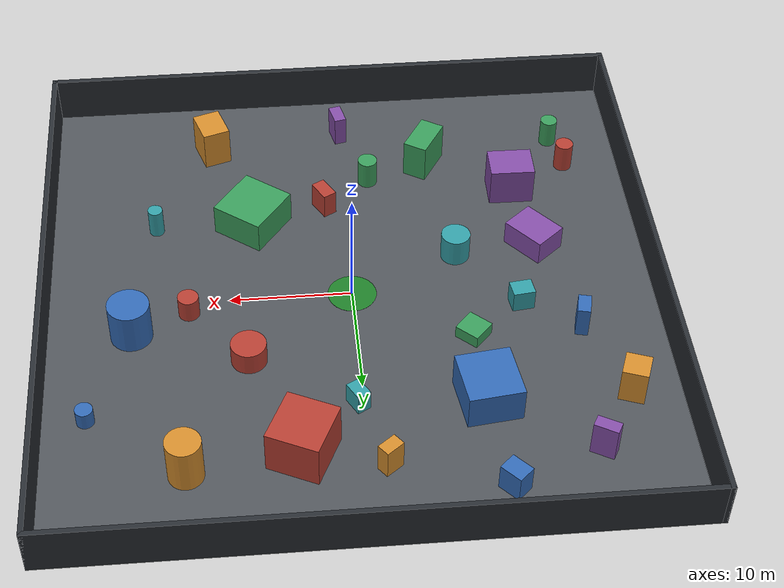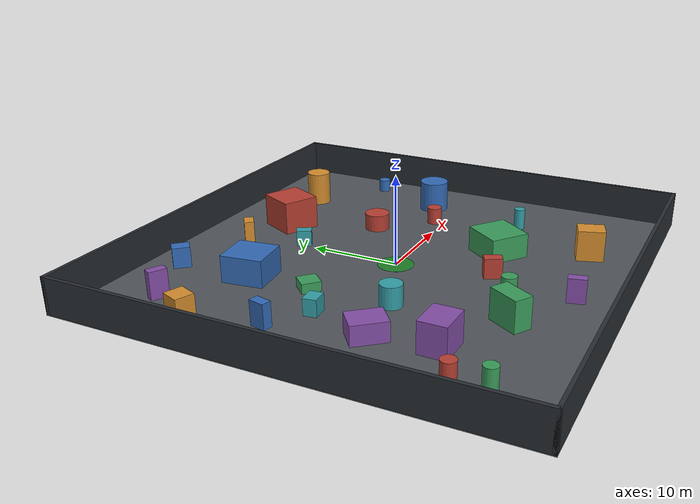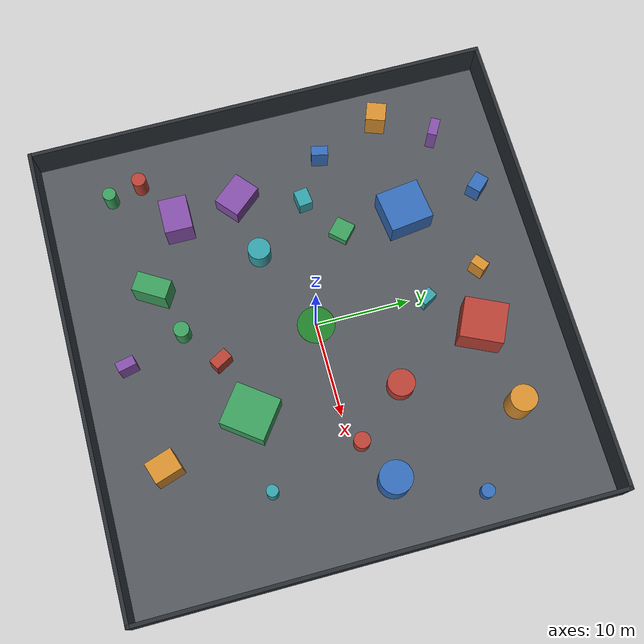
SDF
<?xml version='1.0'?>
<sdf version='1.6'>
  <world name='ego_50x50'>
    <gravity>0 0 -9.8066</gravity>
    <magnetic_field>6.0e-06 2.3e-05 -4.2e-05</magnetic_field>
    <atmosphere type='adiabatic'/>

    <physics name='px4_ode' default='1' type='ode'>
      <max_step_size>0.004</max_step_size>
      <real_time_factor>1.0</real_time_factor>
      <real_time_update_rate>250</real_time_update_rate>
      <ode>
        <solver><type>quick</type><iters>20</iters><sor>1.3</sor></solver>
        <constraints><cfm>0</cfm><erp>0.2</erp><contact_max_correcting_vel>100</contact_max_correcting_vel></constraints>
      </ode>
    </physics>

    <scene>
      <ambient>0.45 0.45 0.45 1</ambient>
      <background>0.72 0.80 0.90 1</background>
      <shadows>false</shadows>
      <grid>true</grid>
    </scene>

    <spherical_coordinates>
      <surface_model>EARTH_WGS84</surface_model>
      <latitude_deg>47.397742</latitude_deg>
      <longitude_deg>8.545594</longitude_deg>
      <elevation>488.0</elevation>
      <heading_deg>0</heading_deg>
    </spherical_coordinates>

    <include>
      <uri>model://sun</uri>
    </include>

    <model name='floor'>
      <static>true</static>
      <pose>0.000 0.000 -0.050 0 0 0.0000</pose>
      <link name='link'>
        <collision name='collision'>
          <geometry><box><size>50.000 50.000 0.100</size></box></geometry>
        </collision>
        <visual name='visual'>
          <geometry><box><size>50.000 50.000 0.100</size></box></geometry>
          <material><ambient>0.320 0.340 0.360 1.000</ambient><diffuse>0.320 0.340 0.360 1.000</diffuse></material>
        </visual>
      </link>
    </model>
    <model name='north_wall'>
      <static>true</static>
      <pose>0.000 24.800 2.000 0 0 0.0000</pose>
      <link name='link'>
        <collision name='collision'>
          <geometry><box><size>50.000 0.400 4.000</size></box></geometry>
        </collision>
        <visual name='visual'>
          <geometry><box><size>50.000 0.400 4.000</size></box></geometry>
          <material><ambient>0.160 0.180 0.200 1.000</ambient><diffuse>0.160 0.180 0.200 1.000</diffuse></material>
        </visual>
      </link>
    </model>
    <model name='south_wall'>
      <static>true</static>
      <pose>0.000 -24.800 2.000 0 0 0.0000</pose>
      <link name='link'>
        <collision name='collision'>
          <geometry><box><size>50.000 0.400 4.000</size></box></geometry>
        </collision>
        <visual name='visual'>
          <geometry><box><size>50.000 0.400 4.000</size></box></geometry>
          <material><ambient>0.160 0.180 0.200 1.000</ambient><diffuse>0.160 0.180 0.200 1.000</diffuse></material>
        </visual>
      </link>
    </model>
    <model name='east_wall'>
      <static>true</static>
      <pose>24.800 0.000 2.000 0 0 0.0000</pose>
      <link name='link'>
        <collision name='collision'>
          <geometry><box><size>0.400 50.000 4.000</size></box></geometry>
        </collision>
        <visual name='visual'>
          <geometry><box><size>0.400 50.000 4.000</size></box></geometry>
          <material><ambient>0.160 0.180 0.200 1.000</ambient><diffuse>0.160 0.180 0.200 1.000</diffuse></material>
        </visual>
      </link>
    </model>
    <model name='west_wall'>
      <static>true</static>
      <pose>-24.800 0.000 2.000 0 0 0.0000</pose>
      <link name='link'>
        <collision name='collision'>
          <geometry><box><size>0.400 50.000 4.000</size></box></geometry>
        </collision>
        <visual name='visual'>
          <geometry><box><size>0.400 50.000 4.000</size></box></geometry>
          <material><ambient>0.160 0.180 0.200 1.000</ambient><diffuse>0.160 0.180 0.200 1.000</diffuse></material>
        </visual>
      </link>
    </model>
    <model name='center_takeoff_marker'>
      <static>true</static>
      <pose>0 0 0.006 0 0 0</pose>
      <link name='link'>
        <visual name='visual'>
          <geometry><cylinder><radius>2.0</radius><length>0.01</length></cylinder></geometry>
          <material><ambient>0.12 0.50 0.16 1</ambient><diffuse>0.12 0.50 0.16 1</diffuse></material>
        </visual>
      </link>
    </model>
    <model name='box_01'>
      <static>true</static>
      <pose>4.950 16.304 1.880 0 0 2.7000</pose>
      <link name='link'>
        <collision name='collision'><geometry><box><size>4.265 4.516 3.760</size></box></geometry></collision>
        <visual name='visual'>
          <geometry><box><size>4.265 4.516 3.760</size></box></geometry>
          <material><ambient>0.720 0.250 0.200 1.000</ambient><diffuse>0.720 0.250 0.200 1.000</diffuse></material>
        </visual>
      </link>
    </model>
    <model name='box_02'>
      <static>true</static>
      <pose>-9.452 12.185 1.507 0 0 -3.0157</pose>
      <link name='link'>
        <collision name='collision'><geometry><box><size>4.412 4.649 3.014</size></box></geometry></collision>
        <visual name='visual'>
          <geometry><box><size>4.412 4.649 3.014</size></box></geometry>
          <material><ambient>0.200 0.420 0.720 1.000</ambient><diffuse>0.200 0.420 0.720 1.000</diffuse></material>
        </visual>
      </link>
    </model>
    <model name='box_03'>
      <static>true</static>
      <pose>7.714 -8.883 1.373 0 0 -0.6445</pose>
      <link name='link'>
        <collision name='collision'><geometry><box><size>4.536 4.821 2.747</size></box></geometry></collision>
        <visual name='visual'>
          <geometry><box><size>4.536 4.821 2.747</size></box></geometry>
          <material><ambient>0.230 0.620 0.360 1.000</ambient><diffuse>0.230 0.620 0.360 1.000</diffuse></material>
        </visual>
      </link>
    </model>
    <model name='cylinder_01'>
      <static>true</static>
      <pose>13.685 17.612 1.953 0 0 0.0000</pose>
      <link name='link'>
        <collision name='collision'><geometry><cylinder><radius>1.384</radius><length>3.907</length></cylinder></geometry></collision>
        <visual name='visual'>
          <geometry><cylinder><radius>1.384</radius><length>3.907</length></cylinder></geometry>
          <material><ambient>0.840 0.560 0.180 1.000</ambient><diffuse>0.840 0.560 0.180 1.000</diffuse></material>
        </visual>
      </link>
    </model>
    <model name='box_04'>
      <static>true</static>
      <pose>-15.599 -4.608 1.066 0 0 2.2727</pose>
      <link name='link'>
        <collision name='collision'><geometry><box><size>3.780 2.917 2.131</size></box></geometry></collision>
        <visual name='visual'>
          <geometry><box><size>3.780 2.917 2.131</size></box></geometry>
          <material><ambient>0.520 0.310 0.660 1.000</ambient><diffuse>0.520 0.310 0.660 1.000</diffuse></material>
        </visual>
      </link>
    </model>
    <model name='cylinder_02'>
      <static>true</static>
      <pose>-8.913 -3.810 1.204 0 0 0.0000</pose>
      <link name='link'>
        <collision name='collision'><geometry><cylinder><radius>1.203</radius><length>2.408</length></cylinder></geometry></collision>
        <visual name='visual'>
          <geometry><cylinder><radius>1.203</radius><length>2.408</length></cylinder></geometry>
          <material><ambient>0.200 0.630 0.660 1.000</ambient><diffuse>0.200 0.630 0.660 1.000</diffuse></material>
        </visual>
      </link>
    </model>
    <model name='cylinder_03'>
      <static>true</static>
      <pose>8.641 6.620 0.963 0 0 0.0000</pose>
      <link name='link'>
        <collision name='collision'><geometry><cylinder><radius>1.428</radius><length>1.926</length></cylinder></geometry></collision>
        <visual name='visual'>
          <geometry><cylinder><radius>1.428</radius><length>1.926</length></cylinder></geometry>
          <material><ambient>0.720 0.250 0.200 1.000</ambient><diffuse>0.720 0.250 0.200 1.000</diffuse></material>
        </visual>
      </link>
    </model>
    <model name='cylinder_04'>
      <static>true</static>
      <pose>17.877 3.250 1.780 0 0 0.0000</pose>
      <link name='link'>
        <collision name='collision'><geometry><cylinder><radius>1.697</radius><length>3.560</length></cylinder></geometry></collision>
        <visual name='visual'>
          <geometry><cylinder><radius>1.697</radius><length>3.560</length></cylinder></geometry>
          <material><ambient>0.200 0.420 0.720 1.000</ambient><diffuse>0.200 0.420 0.720 1.000</diffuse></material>
        </visual>
      </link>
    </model>
    <model name='box_05'>
      <static>true</static>
      <pose>-7.523 -15.478 1.695 0 0 1.0232</pose>
      <link name='link'>
        <collision name='collision'><geometry><box><size>3.666 2.062 3.389</size></box></geometry></collision>
        <visual name='visual'>
          <geometry><box><size>3.666 2.062 3.389</size></box></geometry>
          <material><ambient>0.230 0.620 0.360 1.000</ambient><diffuse>0.230 0.620 0.360 1.000</diffuse></material>
        </visual>
      </link>
    </model>
    <model name='box_06'>
      <static>true</static>
      <pose>10.951 -18.362 1.732 0 0 -1.2589</pose>
      <link name='link'>
        <collision name='collision'><geometry><box><size>2.970 2.334 3.464</size></box></geometry></collision>
        <visual name='visual'>
          <geometry><box><size>2.970 2.334 3.464</size></box></geometry>
          <material><ambient>0.840 0.560 0.180 1.000</ambient><diffuse>0.840 0.560 0.180 1.000</diffuse></material>
        </visual>
      </link>
    </model>
    <model name='box_07'>
      <static>true</static>
      <pose>-14.587 -11.390 1.677 0 0 -1.5811</pose>
      <link name='link'>
        <collision name='collision'><geometry><box><size>2.962 3.732 3.353</size></box></geometry></collision>
        <visual name='visual'>
          <geometry><box><size>2.962 3.732 3.353</size></box></geometry>
          <material><ambient>0.520 0.310 0.660 1.000</ambient><diffuse>0.520 0.310 0.660 1.000</diffuse></material>
        </visual>
      </link>
    </model>
    <model name='box_08'>
      <static>true</static>
      <pose>-13.578 2.193 0.929 0 0 -3.0153</pose>
      <link name='link'>
        <collision name='collision'><geometry><box><size>1.812 1.481 1.858</size></box></geometry></collision>
        <visual name='visual'>
          <geometry><box><size>1.812 1.481 1.858</size></box></geometry>
          <material><ambient>0.200 0.630 0.660 1.000</ambient><diffuse>0.200 0.630 0.660 1.000</diffuse></material>
        </visual>
      </link>
    </model>
    <model name='cylinder_05'>
      <static>true</static>
      <pose>13.279 1.194 0.972 0 0 0.0000</pose>
      <link name='link'>
        <collision name='collision'><geometry><cylinder><radius>0.854</radius><length>1.944</length></cylinder></geometry></collision>
        <visual name='visual'>
          <geometry><cylinder><radius>0.854</radius><length>1.944</length></cylinder></geometry>
          <material><ambient>0.720 0.250 0.200 1.000</ambient><diffuse>0.720 0.250 0.200 1.000</diffuse></material>
        </visual>
      </link>
    </model>
    <model name='cylinder_06'>
      <static>true</static>
      <pose>21.248 11.886 0.734 0 0 0.0000</pose>
      <link name='link'>
        <collision name='collision'><geometry><cylinder><radius>0.702</radius><length>1.468</length></cylinder></geometry></collision>
        <visual name='visual'>
          <geometry><cylinder><radius>0.702</radius><length>1.468</length></cylinder></geometry>
          <material><ambient>0.200 0.420 0.720 1.000</ambient><diffuse>0.200 0.420 0.720 1.000</diffuse></material>
        </visual>
      </link>
    </model>
    <model name='cylinder_07'>
      <static>true</static>
      <pose>-2.436 -13.619 1.220 0 0 0.0000</pose>
      <link name='link'>
        <collision name='collision'><geometry><cylinder><radius>0.827</radius><length>2.441</length></cylinder></geometry></collision>
        <visual name='visual'>
          <geometry><cylinder><radius>0.827</radius><length>2.441</length></cylinder></geometry>
          <material><ambient>0.230 0.620 0.360 1.000</ambient><diffuse>0.230 0.620 0.360 1.000</diffuse></material>
        </visual>
      </link>
    </model>
    <model name='box_09'>
      <static>true</static>
      <pose>-1.376 18.024 1.292 0 0 -2.4818</pose>
      <link name='link'>
        <collision name='collision'><geometry><box><size>1.645 1.077 2.585</size></box></geometry></collision>
        <visual name='visual'>
          <geometry><box><size>1.645 1.077 2.585</size></box></geometry>
          <material><ambient>0.840 0.560 0.180 1.000</ambient><diffuse>0.840 0.560 0.180 1.000</diffuse></material>
        </visual>
      </link>
    </model>
    <model name='box_10'>
      <static>true</static>
      <pose>-0.287 -19.859 1.330 0 0 0.2239</pose>
      <link name='link'>
        <collision name='collision'><geometry><box><size>1.027 1.926 2.660</size></box></geometry></collision>
        <visual name='visual'>
          <geometry><box><size>1.027 1.926 2.660</size></box></geometry>
          <material><ambient>0.520 0.310 0.660 1.000</ambient><diffuse>0.520 0.310 0.660 1.000</diffuse></material>
        </visual>
      </link>
    </model>
    <model name='cylinder_08'>
      <static>true</static>
      <pose>15.896 -8.693 1.225 0 0 0.0000</pose>
      <link name='link'>
        <collision name='collision'><geometry><cylinder><radius>0.617</radius><length>2.449</length></cylinder></geometry></collision>
        <visual name='visual'>
          <geometry><cylinder><radius>0.617</radius><length>2.449</length></cylinder></geometry>
          <material><ambient>0.200 0.630 0.660 1.000</ambient><diffuse>0.200 0.630 0.660 1.000</diffuse></material>
        </visual>
      </link>
    </model>
    <model name='box_11'>
      <static>true</static>
      <pose>1.569 -10.465 1.128 0 0 0.5066</pose>
      <link name='link'>
        <collision name='collision'><geometry><box><size>1.186 1.958 2.256</size></box></geometry></collision>
        <visual name='visual'>
          <geometry><box><size>1.186 1.958 2.256</size></box></geometry>
          <material><ambient>0.720 0.250 0.200 1.000</ambient><diffuse>0.720 0.250 0.200 1.000</diffuse></material>
        </visual>
      </link>
    </model>
    <model name='box_12'>
      <static>true</static>
      <pose>-18.007 5.188 1.353 0 0 1.3516</pose>
      <link name='link'>
        <collision name='collision'><geometry><box><size>1.788 1.045 2.705</size></box></geometry></collision>
        <visual name='visual'>
          <geometry><box><size>1.788 1.045 2.705</size></box></geometry>
          <material><ambient>0.200 0.420 0.720 1.000</ambient><diffuse>0.200 0.420 0.720 1.000</diffuse></material>
        </visual>
      </link>
    </model>
    <model name='cylinder_09'>
      <static>true</static>
      <pose>-19.024 -17.706 1.223 0 0 0.0000</pose>
      <link name='link'>
        <collision name='collision'><geometry><cylinder><radius>0.719</radius><length>2.446</length></cylinder></geometry></collision>
        <visual name='visual'>
          <geometry><cylinder><radius>0.719</radius><length>2.446</length></cylinder></geometry>
          <material><ambient>0.230 0.620 0.360 1.000</ambient><diffuse>0.230 0.620 0.360 1.000</diffuse></material>
        </visual>
      </link>
    </model>
    <model name='box_13'>
      <static>true</static>
      <pose>-20.719 12.275 1.559 0 0 2.7852</pose>
      <link name='link'>
        <collision name='collision'><geometry><box><size>2.043 2.114 3.118</size></box></geometry></collision>
        <visual name='visual'>
          <geometry><box><size>2.043 2.114 3.118</size></box></geometry>
          <material><ambient>0.840 0.560 0.180 1.000</ambient><diffuse>0.840 0.560 0.180 1.000</diffuse></material>
        </visual>
      </link>
    </model>
    <model name='box_14'>
      <static>true</static>
      <pose>-17.389 17.816 1.538 0 0 1.0591</pose>
      <link name='link'>
        <collision name='collision'><geometry><box><size>1.015 1.943 3.077</size></box></geometry></collision>
        <visual name='visual'>
          <geometry><box><size>1.015 1.943 3.077</size></box></geometry>
          <material><ambient>0.520 0.310 0.660 1.000</ambient><diffuse>0.520 0.310 0.660 1.000</diffuse></material>
        </visual>
      </link>
    </model>
    <model name='box_15'>
      <static>true</static>
      <pose>0.478 11.802 0.908 0 0 -2.6332</pose>
      <link name='link'>
        <collision name='collision'><geometry><box><size>1.147 1.672 1.816</size></box></geometry></collision>
        <visual name='visual'>
          <geometry><box><size>1.147 1.672 1.816</size></box></geometry>
          <material><ambient>0.200 0.630 0.660 1.000</ambient><diffuse>0.200 0.630 0.660 1.000</diffuse></material>
        </visual>
      </link>
    </model>
    <model name='cylinder_10'>
      <static>true</static>
      <pose>-19.826 -14.334 1.260 0 0 0.0000</pose>
      <link name='link'>
        <collision name='collision'><geometry><cylinder><radius>0.763</radius><length>2.519</length></cylinder></geometry></collision>
        <visual name='visual'>
          <geometry><cylinder><radius>0.763</radius><length>2.519</length></cylinder></geometry>
          <material><ambient>0.720 0.250 0.200 1.000</ambient><diffuse>0.720 0.250 0.200 1.000</diffuse></material>
        </visual>
      </link>
    </model>
    <model name='box_16'>
      <static>true</static>
      <pose>-10.256 20.661 1.155 0 0 -0.8211</pose>
      <link name='link'>
        <collision name='collision'><geometry><box><size>1.915 1.515 2.311</size></box></geometry></collision>
        <visual name='visual'>
          <geometry><box><size>1.915 1.515 2.311</size></box></geometry>
          <material><ambient>0.200 0.420 0.720 1.000</ambient><diffuse>0.200 0.420 0.720 1.000</diffuse></material>
        </visual>
      </link>
    </model>
    <model name='box_17'>
      <static>true</static>
      <pose>-9.261 5.330 0.542 0 0 2.4022</pose>
      <link name='link'>
        <collision name='collision'><geometry><box><size>2.097 2.064 1.084</size></box></geometry></collision>
        <visual name='visual'>
          <geometry><box><size>2.097 2.064 1.084</size></box></geometry>
          <material><ambient>0.230 0.620 0.360 1.000</ambient><diffuse>0.230 0.620 0.360 1.000</diffuse></material>
        </visual>
      </link>
    </model>
  </world>
</sdf>
